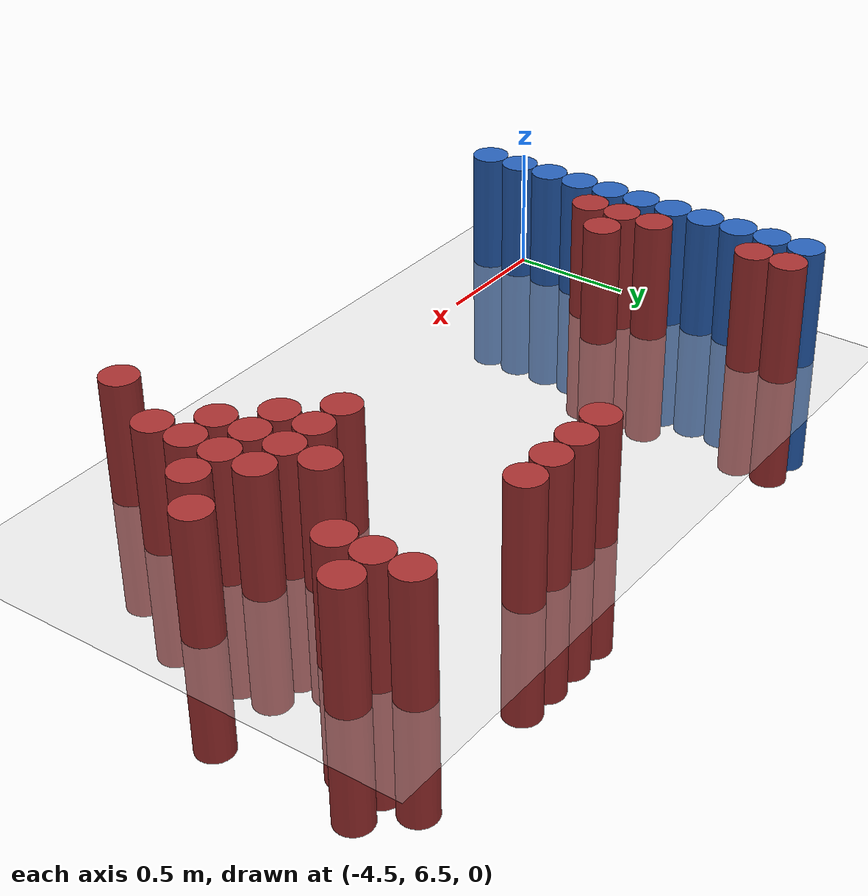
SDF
<sdf version="1.6">
 <world name="default">
  <model name="ground_plane">
   <static>1</static>
   <link name="link">
    <collision name="collision">
     <geometry><plane><normal>0 0 1</normal><size>100 100</size></plane></geometry>
     <surface><friction><ode><mu>100</mu><mu2>50</mu2></ode></friction></surface>
    </collision>
    <visual name="visual">
     <cast_shadows>0</cast_shadows>
     <geometry><plane><normal>0 0 1</normal><size>100 100</size></plane></geometry>
     <material>
      <script><uri>file://media/materials/scripts/gazebo.material</uri><name>Gazebo/Grey</name></script>
     </material>
    </visual>
   </link>
  </model>
  <model name="unit_cylinder_104">
   <static>1</static>
   <pose>-4.425000 6.375000 0.000000 0.000000 0.000000 0.000000</pose>
   <link name="link">
    <inertial>
     <mass>1</mass>
     <inertia><ixx>0.145833</ixx><ixy>0</ixy><ixz>0</ixz><iyy>0.145833</iyy><iyz>0</iyz><izz>0.125</izz></inertia>
    </inertial>
    <collision name="collision">
     <geometry><cylinder><radius>0.075000</radius><length>1</length></cylinder></geometry>
    </collision>
    <visual name="visual">
     <geometry><cylinder><radius>0.075000</radius><length>1</length></cylinder></geometry>
     <material>
      <ambient>0.152000 0.379000 0.720000 1</ambient>
      <diffuse>0.152000 0.379000 0.720000 1</diffuse>
     </material>
     <material>
      <script><name>Gazebo/Grey</name><uri>file://media/materials/scripts/gazebo.material</uri></script>
     </material>
    </visual>
    <sensor name="sensor_contact" type="contact"><contact><collision>collision</collision></contact></sensor>
   </link>
   <plugin filename="gz-sim-touchplugin-system" name="gz::sim::systems::TouchPlugin">
    <target>robot</target>
    <namespace>robot</namespace>
    <time>0.001</time>
    <enabled>true</enabled>
   </plugin>
  </model>
  <model name="unit_cylinder_105">
   <static>1</static>
   <pose>-4.425000 6.525000 0.000000 0.000000 0.000000 0.000000</pose>
   <link name="link">
    <inertial>
     <mass>1</mass>
     <inertia><ixx>0.145833</ixx><ixy>0</ixy><ixz>0</ixz><iyy>0.145833</iyy><iyz>0</iyz><izz>0.125</izz></inertia>
    </inertial>
    <collision name="collision">
     <geometry><cylinder><radius>0.075000</radius><length>1</length></cylinder></geometry>
    </collision>
    <visual name="visual">
     <geometry><cylinder><radius>0.075000</radius><length>1</length></cylinder></geometry>
     <material>
      <ambient>0.152000 0.379000 0.720000 1</ambient>
      <diffuse>0.152000 0.379000 0.720000 1</diffuse>
     </material>
     <material>
      <script><name>Gazebo/Grey</name><uri>file://media/materials/scripts/gazebo.material</uri></script>
     </material>
    </visual>
    <sensor name="sensor_contact" type="contact"><contact><collision>collision</collision></contact></sensor>
   </link>
   <plugin filename="gz-sim-touchplugin-system" name="gz::sim::systems::TouchPlugin">
    <target>robot</target>
    <namespace>robot</namespace>
    <time>0.001</time>
    <enabled>true</enabled>
   </plugin>
  </model>
  <model name="unit_cylinder_106">
   <static>1</static>
   <pose>-4.425000 6.675000 0.000000 0.000000 0.000000 0.000000</pose>
   <link name="link">
    <inertial>
     <mass>1</mass>
     <inertia><ixx>0.145833</ixx><ixy>0</ixy><ixz>0</ixz><iyy>0.145833</iyy><iyz>0</iyz><izz>0.125</izz></inertia>
    </inertial>
    <collision name="collision">
     <geometry><cylinder><radius>0.075000</radius><length>1</length></cylinder></geometry>
    </collision>
    <visual name="visual">
     <geometry><cylinder><radius>0.075000</radius><length>1</length></cylinder></geometry>
     <material>
      <ambient>0.152000 0.379000 0.720000 1</ambient>
      <diffuse>0.152000 0.379000 0.720000 1</diffuse>
     </material>
     <material>
      <script><name>Gazebo/Grey</name><uri>file://media/materials/scripts/gazebo.material</uri></script>
     </material>
    </visual>
    <sensor name="sensor_contact" type="contact"><contact><collision>collision</collision></contact></sensor>
   </link>
   <plugin filename="gz-sim-touchplugin-system" name="gz::sim::systems::TouchPlugin">
    <target>robot</target>
    <namespace>robot</namespace>
    <time>0.001</time>
    <enabled>true</enabled>
   </plugin>
  </model>
  <model name="unit_cylinder_107">
   <static>1</static>
   <pose>-4.425000 6.825000 0.000000 0.000000 0.000000 0.000000</pose>
   <link name="link">
    <inertial>
     <mass>1</mass>
     <inertia><ixx>0.145833</ixx><ixy>0</ixy><ixz>0</ixz><iyy>0.145833</iyy><iyz>0</iyz><izz>0.125</izz></inertia>
    </inertial>
    <collision name="collision">
     <geometry><cylinder><radius>0.075000</radius><length>1</length></cylinder></geometry>
    </collision>
    <visual name="visual">
     <geometry><cylinder><radius>0.075000</radius><length>1</length></cylinder></geometry>
     <material>
      <ambient>0.152000 0.379000 0.720000 1</ambient>
      <diffuse>0.152000 0.379000 0.720000 1</diffuse>
     </material>
     <material>
      <script><name>Gazebo/Grey</name><uri>file://media/materials/scripts/gazebo.material</uri></script>
     </material>
    </visual>
    <sensor name="sensor_contact" type="contact"><contact><collision>collision</collision></contact></sensor>
   </link>
   <plugin filename="gz-sim-touchplugin-system" name="gz::sim::systems::TouchPlugin">
    <target>robot</target>
    <namespace>robot</namespace>
    <time>0.001</time>
    <enabled>true</enabled>
   </plugin>
  </model>
  <model name="unit_cylinder_108">
   <static>1</static>
   <pose>-4.425000 6.975000 0.000000 0.000000 0.000000 0.000000</pose>
   <link name="link">
    <inertial>
     <mass>1</mass>
     <inertia><ixx>0.145833</ixx><ixy>0</ixy><ixz>0</ixz><iyy>0.145833</iyy><iyz>0</iyz><izz>0.125</izz></inertia>
    </inertial>
    <collision name="collision">
     <geometry><cylinder><radius>0.075000</radius><length>1</length></cylinder></geometry>
    </collision>
    <visual name="visual">
     <geometry><cylinder><radius>0.075000</radius><length>1</length></cylinder></geometry>
     <material>
      <ambient>0.152000 0.379000 0.720000 1</ambient>
      <diffuse>0.152000 0.379000 0.720000 1</diffuse>
     </material>
     <material>
      <script><name>Gazebo/Grey</name><uri>file://media/materials/scripts/gazebo.material</uri></script>
     </material>
    </visual>
    <sensor name="sensor_contact" type="contact"><contact><collision>collision</collision></contact></sensor>
   </link>
   <plugin filename="gz-sim-touchplugin-system" name="gz::sim::systems::TouchPlugin">
    <target>robot</target>
    <namespace>robot</namespace>
    <time>0.001</time>
    <enabled>true</enabled>
   </plugin>
  </model>
  <model name="unit_cylinder_109">
   <static>1</static>
   <pose>-4.425000 7.125000 0.000000 0.000000 0.000000 0.000000</pose>
   <link name="link">
    <inertial>
     <mass>1</mass>
     <inertia><ixx>0.145833</ixx><ixy>0</ixy><ixz>0</ixz><iyy>0.145833</iyy><iyz>0</iyz><izz>0.125</izz></inertia>
    </inertial>
    <collision name="collision">
     <geometry><cylinder><radius>0.075000</radius><length>1</length></cylinder></geometry>
    </collision>
    <visual name="visual">
     <geometry><cylinder><radius>0.075000</radius><length>1</length></cylinder></geometry>
     <material>
      <ambient>0.152000 0.379000 0.720000 1</ambient>
      <diffuse>0.152000 0.379000 0.720000 1</diffuse>
     </material>
     <material>
      <script><name>Gazebo/Grey</name><uri>file://media/materials/scripts/gazebo.material</uri></script>
     </material>
    </visual>
    <sensor name="sensor_contact" type="contact"><contact><collision>collision</collision></contact></sensor>
   </link>
   <plugin filename="gz-sim-touchplugin-system" name="gz::sim::systems::TouchPlugin">
    <target>robot</target>
    <namespace>robot</namespace>
    <time>0.001</time>
    <enabled>true</enabled>
   </plugin>
  </model>
  <model name="unit_cylinder_110">
   <static>1</static>
   <pose>-4.425000 7.275000 0.000000 0.000000 0.000000 0.000000</pose>
   <link name="link">
    <inertial>
     <mass>1</mass>
     <inertia><ixx>0.145833</ixx><ixy>0</ixy><ixz>0</ixz><iyy>0.145833</iyy><iyz>0</iyz><izz>0.125</izz></inertia>
    </inertial>
    <collision name="collision">
     <geometry><cylinder><radius>0.075000</radius><length>1</length></cylinder></geometry>
    </collision>
    <visual name="visual">
     <geometry><cylinder><radius>0.075000</radius><length>1</length></cylinder></geometry>
     <material>
      <ambient>0.152000 0.379000 0.720000 1</ambient>
      <diffuse>0.152000 0.379000 0.720000 1</diffuse>
     </material>
     <material>
      <script><name>Gazebo/Grey</name><uri>file://media/materials/scripts/gazebo.material</uri></script>
     </material>
    </visual>
    <sensor name="sensor_contact" type="contact"><contact><collision>collision</collision></contact></sensor>
   </link>
   <plugin filename="gz-sim-touchplugin-system" name="gz::sim::systems::TouchPlugin">
    <target>robot</target>
    <namespace>robot</namespace>
    <time>0.001</time>
    <enabled>true</enabled>
   </plugin>
  </model>
  <model name="unit_cylinder_111">
   <static>1</static>
   <pose>-4.425000 7.425000 0.000000 0.000000 0.000000 0.000000</pose>
   <link name="link">
    <inertial>
     <mass>1</mass>
     <inertia><ixx>0.145833</ixx><ixy>0</ixy><ixz>0</ixz><iyy>0.145833</iyy><iyz>0</iyz><izz>0.125</izz></inertia>
    </inertial>
    <collision name="collision">
     <geometry><cylinder><radius>0.075000</radius><length>1</length></cylinder></geometry>
    </collision>
    <visual name="visual">
     <geometry><cylinder><radius>0.075000</radius><length>1</length></cylinder></geometry>
     <material>
      <ambient>0.152000 0.379000 0.720000 1</ambient>
      <diffuse>0.152000 0.379000 0.720000 1</diffuse>
     </material>
     <material>
      <script><name>Gazebo/Grey</name><uri>file://media/materials/scripts/gazebo.material</uri></script>
     </material>
    </visual>
    <sensor name="sensor_contact" type="contact"><contact><collision>collision</collision></contact></sensor>
   </link>
   <plugin filename="gz-sim-touchplugin-system" name="gz::sim::systems::TouchPlugin">
    <target>robot</target>
    <namespace>robot</namespace>
    <time>0.001</time>
    <enabled>true</enabled>
   </plugin>
  </model>
  <model name="unit_cylinder_112">
   <static>1</static>
   <pose>-4.425000 7.575000 0.000000 0.000000 0.000000 0.000000</pose>
   <link name="link">
    <inertial>
     <mass>1</mass>
     <inertia><ixx>0.145833</ixx><ixy>0</ixy><ixz>0</ixz><iyy>0.145833</iyy><iyz>0</iyz><izz>0.125</izz></inertia>
    </inertial>
    <collision name="collision">
     <geometry><cylinder><radius>0.075000</radius><length>1</length></cylinder></geometry>
    </collision>
    <visual name="visual">
     <geometry><cylinder><radius>0.075000</radius><length>1</length></cylinder></geometry>
     <material>
      <ambient>0.152000 0.379000 0.720000 1</ambient>
      <diffuse>0.152000 0.379000 0.720000 1</diffuse>
     </material>
     <material>
      <script><name>Gazebo/Grey</name><uri>file://media/materials/scripts/gazebo.material</uri></script>
     </material>
    </visual>
    <sensor name="sensor_contact" type="contact"><contact><collision>collision</collision></contact></sensor>
   </link>
   <plugin filename="gz-sim-touchplugin-system" name="gz::sim::systems::TouchPlugin">
    <target>robot</target>
    <namespace>robot</namespace>
    <time>0.001</time>
    <enabled>true</enabled>
   </plugin>
  </model>
  <model name="unit_cylinder_113">
   <static>1</static>
   <pose>-4.425000 7.725000 0.000000 0.000000 0.000000 0.000000</pose>
   <link name="link">
    <inertial>
     <mass>1</mass>
     <inertia><ixx>0.145833</ixx><ixy>0</ixy><ixz>0</ixz><iyy>0.145833</iyy><iyz>0</iyz><izz>0.125</izz></inertia>
    </inertial>
    <collision name="collision">
     <geometry><cylinder><radius>0.075000</radius><length>1</length></cylinder></geometry>
    </collision>
    <visual name="visual">
     <geometry><cylinder><radius>0.075000</radius><length>1</length></cylinder></geometry>
     <material>
      <ambient>0.152000 0.379000 0.720000 1</ambient>
      <diffuse>0.152000 0.379000 0.720000 1</diffuse>
     </material>
     <material>
      <script><name>Gazebo/Grey</name><uri>file://media/materials/scripts/gazebo.material</uri></script>
     </material>
    </visual>
    <sensor name="sensor_contact" type="contact"><contact><collision>collision</collision></contact></sensor>
   </link>
   <plugin filename="gz-sim-touchplugin-system" name="gz::sim::systems::TouchPlugin">
    <target>robot</target>
    <namespace>robot</namespace>
    <time>0.001</time>
    <enabled>true</enabled>
   </plugin>
  </model>
  <model name="unit_cylinder_114">
   <static>1</static>
   <pose>-4.425000 7.875000 0.000000 0.000000 0.000000 0.000000</pose>
   <link name="link">
    <inertial>
     <mass>1</mass>
     <inertia><ixx>0.145833</ixx><ixy>0</ixy><ixz>0</ixz><iyy>0.145833</iyy><iyz>0</iyz><izz>0.125</izz></inertia>
    </inertial>
    <collision name="collision">
     <geometry><cylinder><radius>0.075000</radius><length>1</length></cylinder></geometry>
    </collision>
    <visual name="visual">
     <geometry><cylinder><radius>0.075000</radius><length>1</length></cylinder></geometry>
     <material>
      <ambient>0.152000 0.379000 0.720000 1</ambient>
      <diffuse>0.152000 0.379000 0.720000 1</diffuse>
     </material>
     <material>
      <script><name>Gazebo/Grey</name><uri>file://media/materials/scripts/gazebo.material</uri></script>
     </material>
    </visual>
    <sensor name="sensor_contact" type="contact"><contact><collision>collision</collision></contact></sensor>
   </link>
   <plugin filename="gz-sim-touchplugin-system" name="gz::sim::systems::TouchPlugin">
    <target>robot</target>
    <namespace>robot</namespace>
    <time>0.001</time>
    <enabled>true</enabled>
   </plugin>
  </model>
  <model name="unit_cylinder_128">
   <static>1</static>
   <pose>-4.275000 6.975000 0.000000 0.000000 0.000000 0.000000</pose>
   <link name="link">
    <inertial>
     <mass>1</mass>
     <inertia><ixx>0.145833</ixx><ixy>0</ixy><ixz>0</ixz><iyy>0.145833</iyy><iyz>0</iyz><izz>0.125</izz></inertia>
    </inertial>
    <collision name="collision">
     <geometry><cylinder><radius>0.075000</radius><length>1</length></cylinder></geometry>
    </collision>
    <visual name="visual">
     <geometry><cylinder><radius>0.075000</radius><length>1</length></cylinder></geometry>
     <material>
      <ambient>0.648000 0.192000 0.192000 1</ambient>
      <diffuse>0.648000 0.192000 0.192000 1</diffuse>
     </material>
     <material>
      <script><name>Gazebo/Grey</name><uri>file://media/materials/scripts/gazebo.material</uri></script>
     </material>
    </visual>
    <sensor name="sensor_contact" type="contact"><contact><collision>collision</collision></contact></sensor>
   </link>
   <plugin filename="gz-sim-touchplugin-system" name="gz::sim::systems::TouchPlugin">
    <target>robot</target>
    <namespace>robot</namespace>
    <time>0.001</time>
    <enabled>true</enabled>
   </plugin>
  </model>
  <model name="unit_cylinder_129">
   <static>1</static>
   <pose>-4.275000 7.125000 0.000000 0.000000 0.000000 0.000000</pose>
   <link name="link">
    <inertial>
     <mass>1</mass>
     <inertia><ixx>0.145833</ixx><ixy>0</ixy><ixz>0</ixz><iyy>0.145833</iyy><iyz>0</iyz><izz>0.125</izz></inertia>
    </inertial>
    <collision name="collision">
     <geometry><cylinder><radius>0.075000</radius><length>1</length></cylinder></geometry>
    </collision>
    <visual name="visual">
     <geometry><cylinder><radius>0.075000</radius><length>1</length></cylinder></geometry>
     <material>
      <ambient>0.648000 0.192000 0.192000 1</ambient>
      <diffuse>0.648000 0.192000 0.192000 1</diffuse>
     </material>
     <material>
      <script><name>Gazebo/Grey</name><uri>file://media/materials/scripts/gazebo.material</uri></script>
     </material>
    </visual>
    <sensor name="sensor_contact" type="contact"><contact><collision>collision</collision></contact></sensor>
   </link>
   <plugin filename="gz-sim-touchplugin-system" name="gz::sim::systems::TouchPlugin">
    <target>robot</target>
    <namespace>robot</namespace>
    <time>0.001</time>
    <enabled>true</enabled>
   </plugin>
  </model>
  <model name="unit_cylinder_130">
   <static>1</static>
   <pose>-4.275000 7.275000 0.000000 0.000000 0.000000 0.000000</pose>
   <link name="link">
    <inertial>
     <mass>1</mass>
     <inertia><ixx>0.145833</ixx><ixy>0</ixy><ixz>0</ixz><iyy>0.145833</iyy><iyz>0</iyz><izz>0.125</izz></inertia>
    </inertial>
    <collision name="collision">
     <geometry><cylinder><radius>0.075000</radius><length>1</length></cylinder></geometry>
    </collision>
    <visual name="visual">
     <geometry><cylinder><radius>0.075000</radius><length>1</length></cylinder></geometry>
     <material>
      <ambient>0.648000 0.192000 0.192000 1</ambient>
      <diffuse>0.648000 0.192000 0.192000 1</diffuse>
     </material>
     <material>
      <script><name>Gazebo/Grey</name><uri>file://media/materials/scripts/gazebo.material</uri></script>
     </material>
    </visual>
    <sensor name="sensor_contact" type="contact"><contact><collision>collision</collision></contact></sensor>
   </link>
   <plugin filename="gz-sim-touchplugin-system" name="gz::sim::systems::TouchPlugin">
    <target>robot</target>
    <namespace>robot</namespace>
    <time>0.001</time>
    <enabled>true</enabled>
   </plugin>
  </model>
  <model name="unit_cylinder_131">
   <static>1</static>
   <pose>-4.275000 7.725000 0.000000 0.000000 0.000000 0.000000</pose>
   <link name="link">
    <inertial>
     <mass>1</mass>
     <inertia><ixx>0.145833</ixx><ixy>0</ixy><ixz>0</ixz><iyy>0.145833</iyy><iyz>0</iyz><izz>0.125</izz></inertia>
    </inertial>
    <collision name="collision">
     <geometry><cylinder><radius>0.075000</radius><length>1</length></cylinder></geometry>
    </collision>
    <visual name="visual">
     <geometry><cylinder><radius>0.075000</radius><length>1</length></cylinder></geometry>
     <material>
      <ambient>0.648000 0.192000 0.192000 1</ambient>
      <diffuse>0.648000 0.192000 0.192000 1</diffuse>
     </material>
     <material>
      <script><name>Gazebo/Grey</name><uri>file://media/materials/scripts/gazebo.material</uri></script>
     </material>
    </visual>
    <sensor name="sensor_contact" type="contact"><contact><collision>collision</collision></contact></sensor>
   </link>
   <plugin filename="gz-sim-touchplugin-system" name="gz::sim::systems::TouchPlugin">
    <target>robot</target>
    <namespace>robot</namespace>
    <time>0.001</time>
    <enabled>true</enabled>
   </plugin>
  </model>
  <model name="unit_cylinder_132">
   <static>1</static>
   <pose>-4.275000 7.875000 0.000000 0.000000 0.000000 0.000000</pose>
   <link name="link">
    <inertial>
     <mass>1</mass>
     <inertia><ixx>0.145833</ixx><ixy>0</ixy><ixz>0</ixz><iyy>0.145833</iyy><iyz>0</iyz><izz>0.125</izz></inertia>
    </inertial>
    <collision name="collision">
     <geometry><cylinder><radius>0.075000</radius><length>1</length></cylinder></geometry>
    </collision>
    <visual name="visual">
     <geometry><cylinder><radius>0.075000</radius><length>1</length></cylinder></geometry>
     <material>
      <ambient>0.648000 0.192000 0.192000 1</ambient>
      <diffuse>0.648000 0.192000 0.192000 1</diffuse>
     </material>
     <material>
      <script><name>Gazebo/Grey</name><uri>file://media/materials/scripts/gazebo.material</uri></script>
     </material>
    </visual>
    <sensor name="sensor_contact" type="contact"><contact><collision>collision</collision></contact></sensor>
   </link>
   <plugin filename="gz-sim-touchplugin-system" name="gz::sim::systems::TouchPlugin">
    <target>robot</target>
    <namespace>robot</namespace>
    <time>0.001</time>
    <enabled>true</enabled>
   </plugin>
  </model>
  <model name="unit_cylinder_142">
   <static>1</static>
   <pose>-4.125000 7.125000 0.000000 0.000000 0.000000 0.000000</pose>
   <link name="link">
    <inertial>
     <mass>1</mass>
     <inertia><ixx>0.145833</ixx><ixy>0</ixy><ixz>0</ixz><iyy>0.145833</iyy><iyz>0</iyz><izz>0.125</izz></inertia>
    </inertial>
    <collision name="collision">
     <geometry><cylinder><radius>0.075000</radius><length>1</length></cylinder></geometry>
    </collision>
    <visual name="visual">
     <geometry><cylinder><radius>0.075000</radius><length>1</length></cylinder></geometry>
     <material>
      <ambient>0.648000 0.192000 0.192000 1</ambient>
      <diffuse>0.648000 0.192000 0.192000 1</diffuse>
     </material>
     <material>
      <script><name>Gazebo/Grey</name><uri>file://media/materials/scripts/gazebo.material</uri></script>
     </material>
    </visual>
    <sensor name="sensor_contact" type="contact"><contact><collision>collision</collision></contact></sensor>
   </link>
   <plugin filename="gz-sim-touchplugin-system" name="gz::sim::systems::TouchPlugin">
    <target>robot</target>
    <namespace>robot</namespace>
    <time>0.001</time>
    <enabled>true</enabled>
   </plugin>
  </model>
  <model name="unit_cylinder_162">
   <static>1</static>
   <pose>-2.925000 7.875000 0.000000 0.000000 0.000000 0.000000</pose>
   <link name="link">
    <inertial>
     <mass>1</mass>
     <inertia><ixx>0.145833</ixx><ixy>0</ixy><ixz>0</ixz><iyy>0.145833</iyy><iyz>0</iyz><izz>0.125</izz></inertia>
    </inertial>
    <collision name="collision">
     <geometry><cylinder><radius>0.075000</radius><length>1</length></cylinder></geometry>
    </collision>
    <visual name="visual">
     <geometry><cylinder><radius>0.075000</radius><length>1</length></cylinder></geometry>
     <material>
      <ambient>0.648000 0.192000 0.192000 1</ambient>
      <diffuse>0.648000 0.192000 0.192000 1</diffuse>
     </material>
     <material>
      <script><name>Gazebo/Grey</name><uri>file://media/materials/scripts/gazebo.material</uri></script>
     </material>
    </visual>
    <sensor name="sensor_contact" type="contact"><contact><collision>collision</collision></contact></sensor>
   </link>
   <plugin filename="gz-sim-touchplugin-system" name="gz::sim::systems::TouchPlugin">
    <target>robot</target>
    <namespace>robot</namespace>
    <time>0.001</time>
    <enabled>true</enabled>
   </plugin>
  </model>
  <model name="unit_cylinder_163">
   <static>1</static>
   <pose>-2.775000 7.875000 0.000000 0.000000 0.000000 0.000000</pose>
   <link name="link">
    <inertial>
     <mass>1</mass>
     <inertia><ixx>0.145833</ixx><ixy>0</ixy><ixz>0</ixz><iyy>0.145833</iyy><iyz>0</iyz><izz>0.125</izz></inertia>
    </inertial>
    <collision name="collision">
     <geometry><cylinder><radius>0.075000</radius><length>1</length></cylinder></geometry>
    </collision>
    <visual name="visual">
     <geometry><cylinder><radius>0.075000</radius><length>1</length></cylinder></geometry>
     <material>
      <ambient>0.648000 0.192000 0.192000 1</ambient>
      <diffuse>0.648000 0.192000 0.192000 1</diffuse>
     </material>
     <material>
      <script><name>Gazebo/Grey</name><uri>file://media/materials/scripts/gazebo.material</uri></script>
     </material>
    </visual>
    <sensor name="sensor_contact" type="contact"><contact><collision>collision</collision></contact></sensor>
   </link>
   <plugin filename="gz-sim-touchplugin-system" name="gz::sim::systems::TouchPlugin">
    <target>robot</target>
    <namespace>robot</namespace>
    <time>0.001</time>
    <enabled>true</enabled>
   </plugin>
  </model>
  <model name="unit_cylinder_165">
   <static>1</static>
   <pose>-2.625000 7.875000 0.000000 0.000000 0.000000 0.000000</pose>
   <link name="link">
    <inertial>
     <mass>1</mass>
     <inertia><ixx>0.145833</ixx><ixy>0</ixy><ixz>0</ixz><iyy>0.145833</iyy><iyz>0</iyz><izz>0.125</izz></inertia>
    </inertial>
    <collision name="collision">
     <geometry><cylinder><radius>0.075000</radius><length>1</length></cylinder></geometry>
    </collision>
    <visual name="visual">
     <geometry><cylinder><radius>0.075000</radius><length>1</length></cylinder></geometry>
     <material>
      <ambient>0.648000 0.192000 0.192000 1</ambient>
      <diffuse>0.648000 0.192000 0.192000 1</diffuse>
     </material>
     <material>
      <script><name>Gazebo/Grey</name><uri>file://media/materials/scripts/gazebo.material</uri></script>
     </material>
    </visual>
    <sensor name="sensor_contact" type="contact"><contact><collision>collision</collision></contact></sensor>
   </link>
   <plugin filename="gz-sim-touchplugin-system" name="gz::sim::systems::TouchPlugin">
    <target>robot</target>
    <namespace>robot</namespace>
    <time>0.001</time>
    <enabled>true</enabled>
   </plugin>
  </model>
  <model name="unit_cylinder_169">
   <static>1</static>
   <pose>-2.475000 7.125000 0.000000 0.000000 0.000000 0.000000</pose>
   <link name="link">
    <inertial>
     <mass>1</mass>
     <inertia><ixx>0.145833</ixx><ixy>0</ixy><ixz>0</ixz><iyy>0.145833</iyy><iyz>0</iyz><izz>0.125</izz></inertia>
    </inertial>
    <collision name="collision">
     <geometry><cylinder><radius>0.075000</radius><length>1</length></cylinder></geometry>
    </collision>
    <visual name="visual">
     <geometry><cylinder><radius>0.075000</radius><length>1</length></cylinder></geometry>
     <material>
      <ambient>0.648000 0.192000 0.192000 1</ambient>
      <diffuse>0.648000 0.192000 0.192000 1</diffuse>
     </material>
     <material>
      <script><name>Gazebo/Grey</name><uri>file://media/materials/scripts/gazebo.material</uri></script>
     </material>
    </visual>
    <sensor name="sensor_contact" type="contact"><contact><collision>collision</collision></contact></sensor>
   </link>
   <plugin filename="gz-sim-touchplugin-system" name="gz::sim::systems::TouchPlugin">
    <target>robot</target>
    <namespace>robot</namespace>
    <time>0.001</time>
    <enabled>true</enabled>
   </plugin>
  </model>
  <model name="unit_cylinder_170">
   <static>1</static>
   <pose>-2.475000 7.875000 0.000000 0.000000 0.000000 0.000000</pose>
   <link name="link">
    <inertial>
     <mass>1</mass>
     <inertia><ixx>0.145833</ixx><ixy>0</ixy><ixz>0</ixz><iyy>0.145833</iyy><iyz>0</iyz><izz>0.125</izz></inertia>
    </inertial>
    <collision name="collision">
     <geometry><cylinder><radius>0.075000</radius><length>1</length></cylinder></geometry>
    </collision>
    <visual name="visual">
     <geometry><cylinder><radius>0.075000</radius><length>1</length></cylinder></geometry>
     <material>
      <ambient>0.648000 0.192000 0.192000 1</ambient>
      <diffuse>0.648000 0.192000 0.192000 1</diffuse>
     </material>
     <material>
      <script><name>Gazebo/Grey</name><uri>file://media/materials/scripts/gazebo.material</uri></script>
     </material>
    </visual>
    <sensor name="sensor_contact" type="contact"><contact><collision>collision</collision></contact></sensor>
   </link>
   <plugin filename="gz-sim-touchplugin-system" name="gz::sim::systems::TouchPlugin">
    <target>robot</target>
    <namespace>robot</namespace>
    <time>0.001</time>
    <enabled>true</enabled>
   </plugin>
  </model>
  <model name="unit_cylinder_178">
   <static>1</static>
   <pose>-2.325000 6.975000 0.000000 0.000000 0.000000 0.000000</pose>
   <link name="link">
    <inertial>
     <mass>1</mass>
     <inertia><ixx>0.145833</ixx><ixy>0</ixy><ixz>0</ixz><iyy>0.145833</iyy><iyz>0</iyz><izz>0.125</izz></inertia>
    </inertial>
    <collision name="collision">
     <geometry><cylinder><radius>0.075000</radius><length>1</length></cylinder></geometry>
    </collision>
    <visual name="visual">
     <geometry><cylinder><radius>0.075000</radius><length>1</length></cylinder></geometry>
     <material>
      <ambient>0.648000 0.192000 0.192000 1</ambient>
      <diffuse>0.648000 0.192000 0.192000 1</diffuse>
     </material>
     <material>
      <script><name>Gazebo/Grey</name><uri>file://media/materials/scripts/gazebo.material</uri></script>
     </material>
    </visual>
    <sensor name="sensor_contact" type="contact"><contact><collision>collision</collision></contact></sensor>
   </link>
   <plugin filename="gz-sim-touchplugin-system" name="gz::sim::systems::TouchPlugin">
    <target>robot</target>
    <namespace>robot</namespace>
    <time>0.001</time>
    <enabled>true</enabled>
   </plugin>
  </model>
  <model name="unit_cylinder_179">
   <static>1</static>
   <pose>-2.325000 7.125000 0.000000 0.000000 0.000000 0.000000</pose>
   <link name="link">
    <inertial>
     <mass>1</mass>
     <inertia><ixx>0.145833</ixx><ixy>0</ixy><ixz>0</ixz><iyy>0.145833</iyy><iyz>0</iyz><izz>0.125</izz></inertia>
    </inertial>
    <collision name="collision">
     <geometry><cylinder><radius>0.075000</radius><length>1</length></cylinder></geometry>
    </collision>
    <visual name="visual">
     <geometry><cylinder><radius>0.075000</radius><length>1</length></cylinder></geometry>
     <material>
      <ambient>0.648000 0.192000 0.192000 1</ambient>
      <diffuse>0.648000 0.192000 0.192000 1</diffuse>
     </material>
     <material>
      <script><name>Gazebo/Grey</name><uri>file://media/materials/scripts/gazebo.material</uri></script>
     </material>
    </visual>
    <sensor name="sensor_contact" type="contact"><contact><collision>collision</collision></contact></sensor>
   </link>
   <plugin filename="gz-sim-touchplugin-system" name="gz::sim::systems::TouchPlugin">
    <target>robot</target>
    <namespace>robot</namespace>
    <time>0.001</time>
    <enabled>true</enabled>
   </plugin>
  </model>
  <model name="unit_cylinder_187">
   <static>1</static>
   <pose>-2.175000 6.375000 0.000000 0.000000 0.000000 0.000000</pose>
   <link name="link">
    <inertial>
     <mass>1</mass>
     <inertia><ixx>0.145833</ixx><ixy>0</ixy><ixz>0</ixz><iyy>0.145833</iyy><iyz>0</iyz><izz>0.125</izz></inertia>
    </inertial>
    <collision name="collision">
     <geometry><cylinder><radius>0.075000</radius><length>1</length></cylinder></geometry>
    </collision>
    <visual name="visual">
     <geometry><cylinder><radius>0.075000</radius><length>1</length></cylinder></geometry>
     <material>
      <ambient>0.648000 0.192000 0.192000 1</ambient>
      <diffuse>0.648000 0.192000 0.192000 1</diffuse>
     </material>
     <material>
      <script><name>Gazebo/Grey</name><uri>file://media/materials/scripts/gazebo.material</uri></script>
     </material>
    </visual>
    <sensor name="sensor_contact" type="contact"><contact><collision>collision</collision></contact></sensor>
   </link>
   <plugin filename="gz-sim-touchplugin-system" name="gz::sim::systems::TouchPlugin">
    <target>robot</target>
    <namespace>robot</namespace>
    <time>0.001</time>
    <enabled>true</enabled>
   </plugin>
  </model>
  <model name="unit_cylinder_188">
   <static>1</static>
   <pose>-2.175000 6.825000 0.000000 0.000000 0.000000 0.000000</pose>
   <link name="link">
    <inertial>
     <mass>1</mass>
     <inertia><ixx>0.145833</ixx><ixy>0</ixy><ixz>0</ixz><iyy>0.145833</iyy><iyz>0</iyz><izz>0.125</izz></inertia>
    </inertial>
    <collision name="collision">
     <geometry><cylinder><radius>0.075000</radius><length>1</length></cylinder></geometry>
    </collision>
    <visual name="visual">
     <geometry><cylinder><radius>0.075000</radius><length>1</length></cylinder></geometry>
     <material>
      <ambient>0.648000 0.192000 0.192000 1</ambient>
      <diffuse>0.648000 0.192000 0.192000 1</diffuse>
     </material>
     <material>
      <script><name>Gazebo/Grey</name><uri>file://media/materials/scripts/gazebo.material</uri></script>
     </material>
    </visual>
    <sensor name="sensor_contact" type="contact"><contact><collision>collision</collision></contact></sensor>
   </link>
   <plugin filename="gz-sim-touchplugin-system" name="gz::sim::systems::TouchPlugin">
    <target>robot</target>
    <namespace>robot</namespace>
    <time>0.001</time>
    <enabled>true</enabled>
   </plugin>
  </model>
  <model name="unit_cylinder_189">
   <static>1</static>
   <pose>-2.175000 6.975000 0.000000 0.000000 0.000000 0.000000</pose>
   <link name="link">
    <inertial>
     <mass>1</mass>
     <inertia><ixx>0.145833</ixx><ixy>0</ixy><ixz>0</ixz><iyy>0.145833</iyy><iyz>0</iyz><izz>0.125</izz></inertia>
    </inertial>
    <collision name="collision">
     <geometry><cylinder><radius>0.075000</radius><length>1</length></cylinder></geometry>
    </collision>
    <visual name="visual">
     <geometry><cylinder><radius>0.075000</radius><length>1</length></cylinder></geometry>
     <material>
      <ambient>0.648000 0.192000 0.192000 1</ambient>
      <diffuse>0.648000 0.192000 0.192000 1</diffuse>
     </material>
     <material>
      <script><name>Gazebo/Grey</name><uri>file://media/materials/scripts/gazebo.material</uri></script>
     </material>
    </visual>
    <sensor name="sensor_contact" type="contact"><contact><collision>collision</collision></contact></sensor>
   </link>
   <plugin filename="gz-sim-touchplugin-system" name="gz::sim::systems::TouchPlugin">
    <target>robot</target>
    <namespace>robot</namespace>
    <time>0.001</time>
    <enabled>true</enabled>
   </plugin>
  </model>
  <model name="unit_cylinder_190">
   <static>1</static>
   <pose>-2.175000 7.125000 0.000000 0.000000 0.000000 0.000000</pose>
   <link name="link">
    <inertial>
     <mass>1</mass>
     <inertia><ixx>0.145833</ixx><ixy>0</ixy><ixz>0</ixz><iyy>0.145833</iyy><iyz>0</iyz><izz>0.125</izz></inertia>
    </inertial>
    <collision name="collision">
     <geometry><cylinder><radius>0.075000</radius><length>1</length></cylinder></geometry>
    </collision>
    <visual name="visual">
     <geometry><cylinder><radius>0.075000</radius><length>1</length></cylinder></geometry>
     <material>
      <ambient>0.648000 0.192000 0.192000 1</ambient>
      <diffuse>0.648000 0.192000 0.192000 1</diffuse>
     </material>
     <material>
      <script><name>Gazebo/Grey</name><uri>file://media/materials/scripts/gazebo.material</uri></script>
     </material>
    </visual>
    <sensor name="sensor_contact" type="contact"><contact><collision>collision</collision></contact></sensor>
   </link>
   <plugin filename="gz-sim-touchplugin-system" name="gz::sim::systems::TouchPlugin">
    <target>robot</target>
    <namespace>robot</namespace>
    <time>0.001</time>
    <enabled>true</enabled>
   </plugin>
  </model>
  <model name="unit_cylinder_191">
   <static>1</static>
   <pose>-2.175000 7.275000 0.000000 0.000000 0.000000 0.000000</pose>
   <link name="link">
    <inertial>
     <mass>1</mass>
     <inertia><ixx>0.145833</ixx><ixy>0</ixy><ixz>0</ixz><iyy>0.145833</iyy><iyz>0</iyz><izz>0.125</izz></inertia>
    </inertial>
    <collision name="collision">
     <geometry><cylinder><radius>0.075000</radius><length>1</length></cylinder></geometry>
    </collision>
    <visual name="visual">
     <geometry><cylinder><radius>0.075000</radius><length>1</length></cylinder></geometry>
     <material>
      <ambient>0.648000 0.192000 0.192000 1</ambient>
      <diffuse>0.648000 0.192000 0.192000 1</diffuse>
     </material>
     <material>
      <script><name>Gazebo/Grey</name><uri>file://media/materials/scripts/gazebo.material</uri></script>
     </material>
    </visual>
    <sensor name="sensor_contact" type="contact"><contact><collision>collision</collision></contact></sensor>
   </link>
   <plugin filename="gz-sim-touchplugin-system" name="gz::sim::systems::TouchPlugin">
    <target>robot</target>
    <namespace>robot</namespace>
    <time>0.001</time>
    <enabled>true</enabled>
   </plugin>
  </model>
  <model name="unit_cylinder_193">
   <static>1</static>
   <pose>-2.025000 6.675000 0.000000 0.000000 0.000000 0.000000</pose>
   <link name="link">
    <inertial>
     <mass>1</mass>
     <inertia><ixx>0.145833</ixx><ixy>0</ixy><ixz>0</ixz><iyy>0.145833</iyy><iyz>0</iyz><izz>0.125</izz></inertia>
    </inertial>
    <collision name="collision">
     <geometry><cylinder><radius>0.075000</radius><length>1</length></cylinder></geometry>
    </collision>
    <visual name="visual">
     <geometry><cylinder><radius>0.075000</radius><length>1</length></cylinder></geometry>
     <material>
      <ambient>0.648000 0.192000 0.192000 1</ambient>
      <diffuse>0.648000 0.192000 0.192000 1</diffuse>
     </material>
     <material>
      <script><name>Gazebo/Grey</name><uri>file://media/materials/scripts/gazebo.material</uri></script>
     </material>
    </visual>
    <sensor name="sensor_contact" type="contact"><contact><collision>collision</collision></contact></sensor>
   </link>
   <plugin filename="gz-sim-touchplugin-system" name="gz::sim::systems::TouchPlugin">
    <target>robot</target>
    <namespace>robot</namespace>
    <time>0.001</time>
    <enabled>true</enabled>
   </plugin>
  </model>
  <model name="unit_cylinder_194">
   <static>1</static>
   <pose>-2.025000 6.825000 0.000000 0.000000 0.000000 0.000000</pose>
   <link name="link">
    <inertial>
     <mass>1</mass>
     <inertia><ixx>0.145833</ixx><ixy>0</ixy><ixz>0</ixz><iyy>0.145833</iyy><iyz>0</iyz><izz>0.125</izz></inertia>
    </inertial>
    <collision name="collision">
     <geometry><cylinder><radius>0.075000</radius><length>1</length></cylinder></geometry>
    </collision>
    <visual name="visual">
     <geometry><cylinder><radius>0.075000</radius><length>1</length></cylinder></geometry>
     <material>
      <ambient>0.648000 0.192000 0.192000 1</ambient>
      <diffuse>0.648000 0.192000 0.192000 1</diffuse>
     </material>
     <material>
      <script><name>Gazebo/Grey</name><uri>file://media/materials/scripts/gazebo.material</uri></script>
     </material>
    </visual>
    <sensor name="sensor_contact" type="contact"><contact><collision>collision</collision></contact></sensor>
   </link>
   <plugin filename="gz-sim-touchplugin-system" name="gz::sim::systems::TouchPlugin">
    <target>robot</target>
    <namespace>robot</namespace>
    <time>0.001</time>
    <enabled>true</enabled>
   </plugin>
  </model>
  <model name="unit_cylinder_195">
   <static>1</static>
   <pose>-2.025000 6.975000 0.000000 0.000000 0.000000 0.000000</pose>
   <link name="link">
    <inertial>
     <mass>1</mass>
     <inertia><ixx>0.145833</ixx><ixy>0</ixy><ixz>0</ixz><iyy>0.145833</iyy><iyz>0</iyz><izz>0.125</izz></inertia>
    </inertial>
    <collision name="collision">
     <geometry><cylinder><radius>0.075000</radius><length>1</length></cylinder></geometry>
    </collision>
    <visual name="visual">
     <geometry><cylinder><radius>0.075000</radius><length>1</length></cylinder></geometry>
     <material>
      <ambient>0.648000 0.192000 0.192000 1</ambient>
      <diffuse>0.648000 0.192000 0.192000 1</diffuse>
     </material>
     <material>
      <script><name>Gazebo/Grey</name><uri>file://media/materials/scripts/gazebo.material</uri></script>
     </material>
    </visual>
    <sensor name="sensor_contact" type="contact"><contact><collision>collision</collision></contact></sensor>
   </link>
   <plugin filename="gz-sim-touchplugin-system" name="gz::sim::systems::TouchPlugin">
    <target>robot</target>
    <namespace>robot</namespace>
    <time>0.001</time>
    <enabled>true</enabled>
   </plugin>
  </model>
  <model name="unit_cylinder_196">
   <static>1</static>
   <pose>-2.025000 7.125000 0.000000 0.000000 0.000000 0.000000</pose>
   <link name="link">
    <inertial>
     <mass>1</mass>
     <inertia><ixx>0.145833</ixx><ixy>0</ixy><ixz>0</ixz><iyy>0.145833</iyy><iyz>0</iyz><izz>0.125</izz></inertia>
    </inertial>
    <collision name="collision">
     <geometry><cylinder><radius>0.075000</radius><length>1</length></cylinder></geometry>
    </collision>
    <visual name="visual">
     <geometry><cylinder><radius>0.075000</radius><length>1</length></cylinder></geometry>
     <material>
      <ambient>0.648000 0.192000 0.192000 1</ambient>
      <diffuse>0.648000 0.192000 0.192000 1</diffuse>
     </material>
     <material>
      <script><name>Gazebo/Grey</name><uri>file://media/materials/scripts/gazebo.material</uri></script>
     </material>
    </visual>
    <sensor name="sensor_contact" type="contact"><contact><collision>collision</collision></contact></sensor>
   </link>
   <plugin filename="gz-sim-touchplugin-system" name="gz::sim::systems::TouchPlugin">
    <target>robot</target>
    <namespace>robot</namespace>
    <time>0.001</time>
    <enabled>true</enabled>
   </plugin>
  </model>
  <model name="unit_cylinder_200">
   <static>1</static>
   <pose>-1.875000 6.975000 0.000000 0.000000 0.000000 0.000000</pose>
   <link name="link">
    <inertial>
     <mass>1</mass>
     <inertia><ixx>0.145833</ixx><ixy>0</ixy><ixz>0</ixz><iyy>0.145833</iyy><iyz>0</iyz><izz>0.125</izz></inertia>
    </inertial>
    <collision name="collision">
     <geometry><cylinder><radius>0.075000</radius><length>1</length></cylinder></geometry>
    </collision>
    <visual name="visual">
     <geometry><cylinder><radius>0.075000</radius><length>1</length></cylinder></geometry>
     <material>
      <ambient>0.648000 0.192000 0.192000 1</ambient>
      <diffuse>0.648000 0.192000 0.192000 1</diffuse>
     </material>
     <material>
      <script><name>Gazebo/Grey</name><uri>file://media/materials/scripts/gazebo.material</uri></script>
     </material>
    </visual>
    <sensor name="sensor_contact" type="contact"><contact><collision>collision</collision></contact></sensor>
   </link>
   <plugin filename="gz-sim-touchplugin-system" name="gz::sim::systems::TouchPlugin">
    <target>robot</target>
    <namespace>robot</namespace>
    <time>0.001</time>
    <enabled>true</enabled>
   </plugin>
  </model>
  <model name="unit_cylinder_201">
   <static>1</static>
   <pose>-1.875000 7.575000 0.000000 0.000000 0.000000 0.000000</pose>
   <link name="link">
    <inertial>
     <mass>1</mass>
     <inertia><ixx>0.145833</ixx><ixy>0</ixy><ixz>0</ixz><iyy>0.145833</iyy><iyz>0</iyz><izz>0.125</izz></inertia>
    </inertial>
    <collision name="collision">
     <geometry><cylinder><radius>0.075000</radius><length>1</length></cylinder></geometry>
    </collision>
    <visual name="visual">
     <geometry><cylinder><radius>0.075000</radius><length>1</length></cylinder></geometry>
     <material>
      <ambient>0.648000 0.192000 0.192000 1</ambient>
      <diffuse>0.648000 0.192000 0.192000 1</diffuse>
     </material>
     <material>
      <script><name>Gazebo/Grey</name><uri>file://media/materials/scripts/gazebo.material</uri></script>
     </material>
    </visual>
    <sensor name="sensor_contact" type="contact"><contact><collision>collision</collision></contact></sensor>
   </link>
   <plugin filename="gz-sim-touchplugin-system" name="gz::sim::systems::TouchPlugin">
    <target>robot</target>
    <namespace>robot</namespace>
    <time>0.001</time>
    <enabled>true</enabled>
   </plugin>
  </model>
  <model name="unit_cylinder_202">
   <static>1</static>
   <pose>-1.875000 7.725000 0.000000 0.000000 0.000000 0.000000</pose>
   <link name="link">
    <inertial>
     <mass>1</mass>
     <inertia><ixx>0.145833</ixx><ixy>0</ixy><ixz>0</ixz><iyy>0.145833</iyy><iyz>0</iyz><izz>0.125</izz></inertia>
    </inertial>
    <collision name="collision">
     <geometry><cylinder><radius>0.075000</radius><length>1</length></cylinder></geometry>
    </collision>
    <visual name="visual">
     <geometry><cylinder><radius>0.075000</radius><length>1</length></cylinder></geometry>
     <material>
      <ambient>0.648000 0.192000 0.192000 1</ambient>
      <diffuse>0.648000 0.192000 0.192000 1</diffuse>
     </material>
     <material>
      <script><name>Gazebo/Grey</name><uri>file://media/materials/scripts/gazebo.material</uri></script>
     </material>
    </visual>
    <sensor name="sensor_contact" type="contact"><contact><collision>collision</collision></contact></sensor>
   </link>
   <plugin filename="gz-sim-touchplugin-system" name="gz::sim::systems::TouchPlugin">
    <target>robot</target>
    <namespace>robot</namespace>
    <time>0.001</time>
    <enabled>true</enabled>
   </plugin>
  </model>
  <model name="unit_cylinder_203">
   <static>1</static>
   <pose>-1.875000 7.875000 0.000000 0.000000 0.000000 0.000000</pose>
   <link name="link">
    <inertial>
     <mass>1</mass>
     <inertia><ixx>0.145833</ixx><ixy>0</ixy><ixz>0</ixz><iyy>0.145833</iyy><iyz>0</iyz><izz>0.125</izz></inertia>
    </inertial>
    <collision name="collision">
     <geometry><cylinder><radius>0.075000</radius><length>1</length></cylinder></geometry>
    </collision>
    <visual name="visual">
     <geometry><cylinder><radius>0.075000</radius><length>1</length></cylinder></geometry>
     <material>
      <ambient>0.648000 0.192000 0.192000 1</ambient>
      <diffuse>0.648000 0.192000 0.192000 1</diffuse>
     </material>
     <material>
      <script><name>Gazebo/Grey</name><uri>file://media/materials/scripts/gazebo.material</uri></script>
     </material>
    </visual>
    <sensor name="sensor_contact" type="contact"><contact><collision>collision</collision></contact></sensor>
   </link>
   <plugin filename="gz-sim-touchplugin-system" name="gz::sim::systems::TouchPlugin">
    <target>robot</target>
    <namespace>robot</namespace>
    <time>0.001</time>
    <enabled>true</enabled>
   </plugin>
  </model>
  <model name="unit_cylinder_205">
   <static>1</static>
   <pose>-1.725000 7.125000 0.000000 0.000000 0.000000 0.000000</pose>
   <link name="link">
    <inertial>
     <mass>1</mass>
     <inertia><ixx>0.145833</ixx><ixy>0</ixy><ixz>0</ixz><iyy>0.145833</iyy><iyz>0</iyz><izz>0.125</izz></inertia>
    </inertial>
    <collision name="collision">
     <geometry><cylinder><radius>0.075000</radius><length>1</length></cylinder></geometry>
    </collision>
    <visual name="visual">
     <geometry><cylinder><radius>0.075000</radius><length>1</length></cylinder></geometry>
     <material>
      <ambient>0.648000 0.192000 0.192000 1</ambient>
      <diffuse>0.648000 0.192000 0.192000 1</diffuse>
     </material>
     <material>
      <script><name>Gazebo/Grey</name><uri>file://media/materials/scripts/gazebo.material</uri></script>
     </material>
    </visual>
    <sensor name="sensor_contact" type="contact"><contact><collision>collision</collision></contact></sensor>
   </link>
   <plugin filename="gz-sim-touchplugin-system" name="gz::sim::systems::TouchPlugin">
    <target>robot</target>
    <namespace>robot</namespace>
    <time>0.001</time>
    <enabled>true</enabled>
   </plugin>
  </model>
  <model name="unit_cylinder_206">
   <static>1</static>
   <pose>-1.725000 7.725000 0.000000 0.000000 0.000000 0.000000</pose>
   <link name="link">
    <inertial>
     <mass>1</mass>
     <inertia><ixx>0.145833</ixx><ixy>0</ixy><ixz>0</ixz><iyy>0.145833</iyy><iyz>0</iyz><izz>0.125</izz></inertia>
    </inertial>
    <collision name="collision">
     <geometry><cylinder><radius>0.075000</radius><length>1</length></cylinder></geometry>
    </collision>
    <visual name="visual">
     <geometry><cylinder><radius>0.075000</radius><length>1</length></cylinder></geometry>
     <material>
      <ambient>0.648000 0.192000 0.192000 1</ambient>
      <diffuse>0.648000 0.192000 0.192000 1</diffuse>
     </material>
     <material>
      <script><name>Gazebo/Grey</name><uri>file://media/materials/scripts/gazebo.material</uri></script>
     </material>
    </visual>
    <sensor name="sensor_contact" type="contact"><contact><collision>collision</collision></contact></sensor>
   </link>
   <plugin filename="gz-sim-touchplugin-system" name="gz::sim::systems::TouchPlugin">
    <target>robot</target>
    <namespace>robot</namespace>
    <time>0.001</time>
    <enabled>true</enabled>
   </plugin>
  </model>
 </world>
</sdf>
